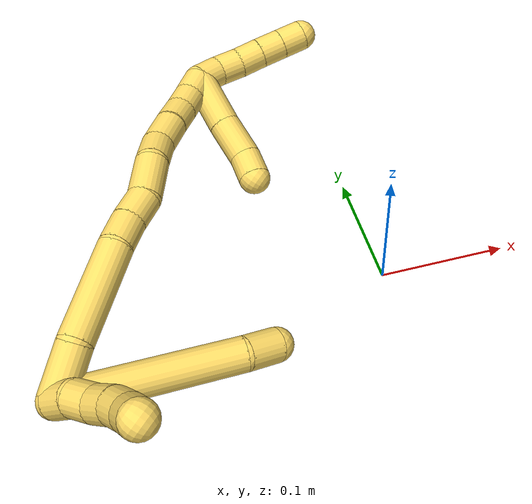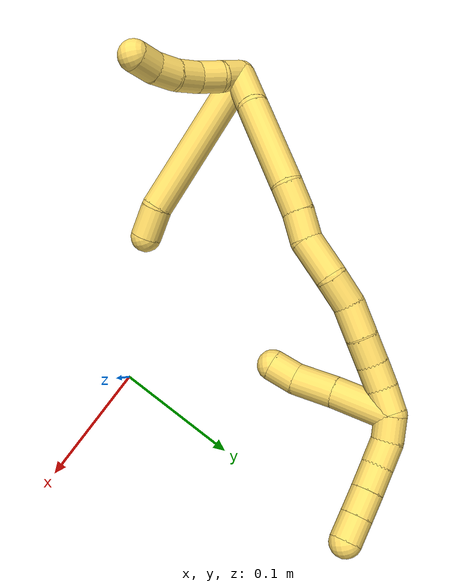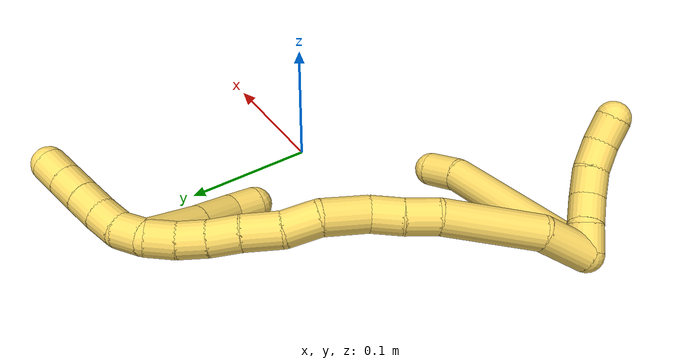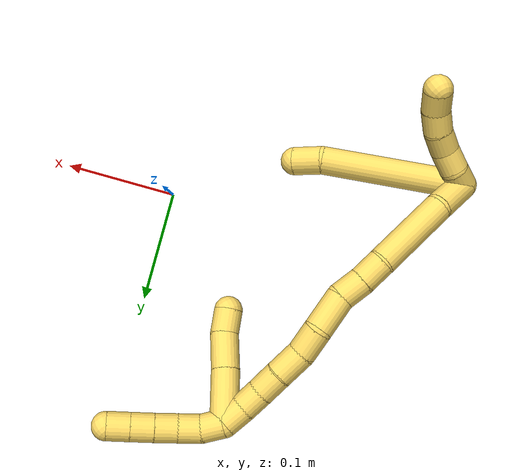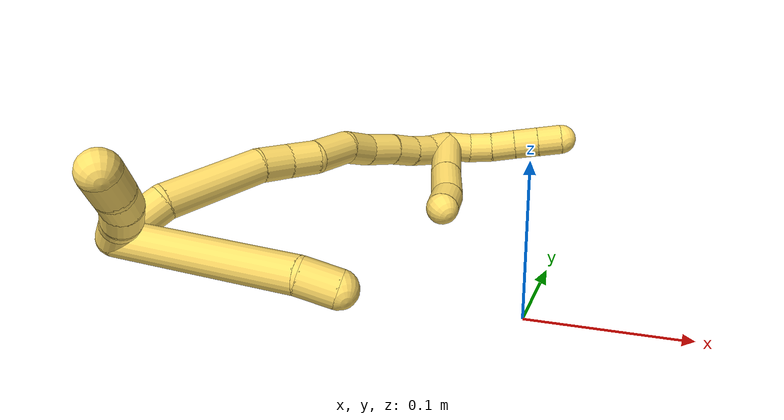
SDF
<sdf version="1.7">
 <world name="default">
  <model name="5">
   <static>0</static>
   <link name="5">
    <collision name="collision-cylinder-e_1_2_8">
     <pose>-0.029639 0.03661 -0.040576 -2.40754 -0.496947 1.16668</pose>
     <geometry><cylinder><radius>0.0125</radius><length>0.124341</length></cylinder></geometry>
     <surface>
      <friction><ode><mu>1.16</mu><mu2>1.16</mu2><slip1>0</slip1><slip2>0</slip2></ode></friction>
      <contact><ode><kp>1e+06</kp><kd>1</kd><max_vel>0</max_vel><min_depth>0.001</min_depth></ode></contact>
     </surface>
    </collision>
    <visual name="visual-cylinder-e_1_2_8">
     <pose>-0.029639 0.03661 -0.040576 -2.40754 -0.496947 1.16668</pose>
     <geometry><cylinder><radius>0.0125</radius><length>0.124341</length></cylinder></geometry>
     <material><ambient>1 0.858824 0.4 1</ambient></material>
    </visual>
    <collision name="collision-cylinder-e_2_8_6">
     <pose>-0.068138 0.07884 -0.088535 -2.4909 -0.762231 1.74212</pose>
     <geometry><cylinder><radius>0.0125</radius><length>0.025659</length></cylinder></geometry>
     <surface>
      <friction><ode><mu>1.16</mu><mu2>1.16</mu2><slip1>0</slip1><slip2>0</slip2></ode></friction>
      <contact><ode><kp>1e+06</kp><kd>1</kd><max_vel>0</max_vel><min_depth>0.001</min_depth></ode></contact>
     </surface>
    </collision>
    <visual name="visual-cylinder-e_2_8_6">
     <pose>-0.068138 0.07884 -0.088535 -2.4909 -0.762231 1.74212</pose>
     <geometry><cylinder><radius>0.0125</radius><length>0.025659</length></cylinder></geometry>
     <material><ambient>1 0.858824 0.4 1</ambient></material>
    </visual>
    <collision name="collision-cylinder-e_1_2_9">
     <pose>0.004683 0.007467 -0.004724 -2.13485 0.487336 -0.848119</pose>
     <geometry><cylinder><radius>0.0125</radius><length>0.02</length></cylinder></geometry>
     <surface>
      <friction><ode><mu>1.16</mu><mu2>1.16</mu2><slip1>0</slip1><slip2>0</slip2></ode></friction>
      <contact><ode><kp>1e+06</kp><kd>1</kd><max_vel>0</max_vel><min_depth>0.001</min_depth></ode></contact>
     </surface>
    </collision>
    <visual name="visual-cylinder-e_1_2_9">
     <pose>0.004683 0.007467 -0.004724 -2.13485 0.487336 -0.848119</pose>
     <geometry><cylinder><radius>0.0125</radius><length>0.02</length></cylinder></geometry>
     <material><ambient>1 0.858824 0.4 1</ambient></material>
    </visual>
    <collision name="collision-cylinder-e_2_9_10">
     <pose>0.013838 0.02047 -0.016473 -2.47426 0.463701 -1.19589</pose>
     <geometry><cylinder><radius>0.0125</radius><length>0.02</length></cylinder></geometry>
     <surface>
      <friction><ode><mu>1.16</mu><mu2>1.16</mu2><slip1>0</slip1><slip2>0</slip2></ode></friction>
      <contact><ode><kp>1e+06</kp><kd>1</kd><max_vel>0</max_vel><min_depth>0.001</min_depth></ode></contact>
     </surface>
    </collision>
    <visual name="visual-cylinder-e_2_9_10">
     <pose>0.013838 0.02047 -0.016473 -2.47426 0.463701 -1.19589</pose>
     <geometry><cylinder><radius>0.0125</radius><length>0.02</length></cylinder></geometry>
     <material><ambient>1 0.858824 0.4 1</ambient></material>
    </visual>
    <collision name="collision-cylinder-e_3_10_11">
     <pose>0.023915 0.032552 -0.028571 -2.22993 0.59487 -1.11753</pose>
     <geometry><cylinder><radius>0.0125</radius><length>0.02</length></cylinder></geometry>
     <surface>
      <friction><ode><mu>1.16</mu><mu2>1.16</mu2><slip1>0</slip1><slip2>0</slip2></ode></friction>
      <contact><ode><kp>1e+06</kp><kd>1</kd><max_vel>0</max_vel><min_depth>0.001</min_depth></ode></contact>
     </surface>
    </collision>
    <visual name="visual-cylinder-e_3_10_11">
     <pose>0.023915 0.032552 -0.028571 -2.22993 0.59487 -1.11753</pose>
     <geometry><cylinder><radius>0.0125</radius><length>0.02</length></cylinder></geometry>
     <material><ambient>1 0.858824 0.4 1</ambient></material>
    </visual>
    <collision name="collision-cylinder-e_4_11_12">
     <pose>0.036596 0.044138 -0.038595 -2.34748 0.786285 -1.55978</pose>
     <geometry><cylinder><radius>0.0125</radius><length>0.02</length></cylinder></geometry>
     <surface>
      <friction><ode><mu>1.16</mu><mu2>1.16</mu2><slip1>0</slip1><slip2>0</slip2></ode></friction>
      <contact><ode><kp>1e+06</kp><kd>1</kd><max_vel>0</max_vel><min_depth>0.001</min_depth></ode></contact>
     </surface>
    </collision>
    <visual name="visual-cylinder-e_4_11_12">
     <pose>0.036596 0.044138 -0.038595 -2.34748 0.786285 -1.55978</pose>
     <geometry><cylinder><radius>0.0125</radius><length>0.02</length></cylinder></geometry>
     <material><ambient>1 0.858824 0.4 1</ambient></material>
    </visual>
    <collision name="collision-cylinder-e_5_12_5">
     <pose>0.051858 0.054118 -0.04648 -2.10664 0.95865 -1.48002</pose>
     <geometry><cylinder><radius>0.0125</radius><length>0.02</length></cylinder></geometry>
     <surface>
      <friction><ode><mu>1.16</mu><mu2>1.16</mu2><slip1>0</slip1><slip2>0</slip2></ode></friction>
      <contact><ode><kp>1e+06</kp><kd>1</kd><max_vel>0</max_vel><min_depth>0.001</min_depth></ode></contact>
     </surface>
    </collision>
    <visual name="visual-cylinder-e_5_12_5">
     <pose>0.051858 0.054118 -0.04648 -2.10664 0.95865 -1.48002</pose>
     <geometry><cylinder><radius>0.0125</radius><length>0.02</length></cylinder></geometry>
     <material><ambient>1 0.858824 0.4 1</ambient></material>
    </visual>
    <collision name="collision-cylinder-e_1_2_13">
     <pose>-0.007566 0.015788 0.005992 -1.20807 -0.42122 0.292936</pose>
     <geometry><cylinder><radius>0.0125</radius><length>0.037008</length></cylinder></geometry>
     <surface>
      <friction><ode><mu>1.16</mu><mu2>1.16</mu2><slip1>0</slip1><slip2>0</slip2></ode></friction>
      <contact><ode><kp>1e+06</kp><kd>1</kd><max_vel>0</max_vel><min_depth>0.001</min_depth></ode></contact>
     </surface>
    </collision>
    <visual name="visual-cylinder-e_1_2_13">
     <pose>-0.007566 0.015788 0.005992 -1.20807 -0.42122 0.292936</pose>
     <geometry><cylinder><radius>0.0125</radius><length>0.037008</length></cylinder></geometry>
     <material><ambient>1 0.858824 0.4 1</ambient></material>
    </visual>
    <collision name="collision-cylinder-e_2_13_14">
     <pose>-0.038783 0.056157 0.021761 -1.19221 -0.729521 0.506972</pose>
     <geometry><cylinder><radius>0.0125</radius><length>0.07097</length></cylinder></geometry>
     <surface>
      <friction><ode><mu>1.16</mu><mu2>1.16</mu2><slip1>0</slip1><slip2>0</slip2></ode></friction>
      <contact><ode><kp>1e+06</kp><kd>1</kd><max_vel>0</max_vel><min_depth>0.001</min_depth></ode></contact>
     </surface>
    </collision>
    <visual name="visual-cylinder-e_2_13_14">
     <pose>-0.038783 0.056157 0.021761 -1.19221 -0.729521 0.506972</pose>
     <geometry><cylinder><radius>0.0125</radius><length>0.07097</length></cylinder></geometry>
     <material><ambient>1 0.858824 0.4 1</ambient></material>
    </visual>
    <collision name="collision-cylinder-e_3_14_15">
     <pose>-0.071682 0.087127 0.033971 -1.20714 -0.934157 0.669169</pose>
     <geometry><cylinder><radius>0.0125</radius><length>0.023002</length></cylinder></geometry>
     <surface>
      <friction><ode><mu>1.16</mu><mu2>1.16</mu2><slip1>0</slip1><slip2>0</slip2></ode></friction>
      <contact><ode><kp>1e+06</kp><kd>1</kd><max_vel>0</max_vel><min_depth>0.001</min_depth></ode></contact>
     </surface>
    </collision>
    <visual name="visual-cylinder-e_3_14_15">
     <pose>-0.071682 0.087127 0.033971 -1.20714 -0.934157 0.669169</pose>
     <geometry><cylinder><radius>0.0125</radius><length>0.023002</length></cylinder></geometry>
     <material><ambient>1 0.858824 0.4 1</ambient></material>
    </visual>
    <collision name="collision-cylinder-e_4_15_16">
     <pose>-0.089771 0.10047 0.037703 -1.38595 -0.896055 0.759439</pose>
     <geometry><cylinder><radius>0.0125</radius><length>0.022645</length></cylinder></geometry>
     <surface>
      <friction><ode><mu>1.16</mu><mu2>1.16</mu2><slip1>0</slip1><slip2>0</slip2></ode></friction>
      <contact><ode><kp>1e+06</kp><kd>1</kd><max_vel>0</max_vel><min_depth>0.001</min_depth></ode></contact>
     </surface>
    </collision>
    <visual name="visual-cylinder-e_4_15_16">
     <pose>-0.089771 0.10047 0.037703 -1.38595 -0.896055 0.759439</pose>
     <geometry><cylinder><radius>0.0125</radius><length>0.022645</length></cylinder></geometry>
     <material><ambient>1 0.858824 0.4 1</ambient></material>
    </visual>
    <collision name="collision-cylinder-e_5_16_17">
     <pose>-0.110951 0.115961 0.045736 -0.903052 -0.848418 0.431217</pose>
     <geometry><cylinder><radius>0.0125</radius><length>0.032892</length></cylinder></geometry>
     <surface>
      <friction><ode><mu>1.16</mu><mu2>1.16</mu2><slip1>0</slip1><slip2>0</slip2></ode></friction>
      <contact><ode><kp>1e+06</kp><kd>1</kd><max_vel>0</max_vel><min_depth>0.001</min_depth></ode></contact>
     </surface>
    </collision>
    <visual name="visual-cylinder-e_5_16_17">
     <pose>-0.110951 0.115961 0.045736 -0.903052 -0.848418 0.431217</pose>
     <geometry><cylinder><radius>0.0125</radius><length>0.032892</length></cylinder></geometry>
     <material><ambient>1 0.858824 0.4 1</ambient></material>
    </visual>
    <collision name="collision-cylinder-e_6_17_18">
     <pose>-0.134552 0.127944 0.056166 -0.750102 -1.14907 0.499108</pose>
     <geometry><cylinder><radius>0.0125</radius><length>0.024689</length></cylinder></geometry>
     <surface>
      <friction><ode><mu>1.16</mu><mu2>1.16</mu2><slip1>0</slip1><slip2>0</slip2></ode></friction>
      <contact><ode><kp>1e+06</kp><kd>1</kd><max_vel>0</max_vel><min_depth>0.001</min_depth></ode></contact>
     </surface>
    </collision>
    <visual name="visual-cylinder-e_6_17_18">
     <pose>-0.134552 0.127944 0.056166 -0.750102 -1.14907 0.499108</pose>
     <geometry><cylinder><radius>0.0125</radius><length>0.024689</length></cylinder></geometry>
     <material><ambient>1 0.858824 0.4 1</ambient></material>
    </visual>
    <collision name="collision-cylinder-e_7_18_19">
     <pose>-0.157198 0.137737 0.062064 -1.23698 -1.03753 0.771826</pose>
     <geometry><cylinder><radius>0.0125</radius><length>0.026437</length></cylinder></geometry>
     <surface>
      <friction><ode><mu>1.16</mu><mu2>1.16</mu2><slip1>0</slip1><slip2>0</slip2></ode></friction>
      <contact><ode><kp>1e+06</kp><kd>1</kd><max_vel>0</max_vel><min_depth>0.001</min_depth></ode></contact>
     </surface>
    </collision>
    <visual name="visual-cylinder-e_7_18_19">
     <pose>-0.157198 0.137737 0.062064 -1.23698 -1.03753 0.771826</pose>
     <geometry><cylinder><radius>0.0125</radius><length>0.026437</length></cylinder></geometry>
     <material><ambient>1 0.858824 0.4 1</ambient></material>
    </visual>
    <collision name="collision-cylinder-e_8_19_20">
     <pose>-0.178483 0.148431 0.065812 -1.22892 -1.13485 0.845199</pose>
     <geometry><cylinder><radius>0.0125</radius><length>0.021846</length></cylinder></geometry>
     <surface>
      <friction><ode><mu>1.16</mu><mu2>1.16</mu2><slip1>0</slip1><slip2>0</slip2></ode></friction>
      <contact><ode><kp>1e+06</kp><kd>1</kd><max_vel>0</max_vel><min_depth>0.001</min_depth></ode></contact>
     </surface>
    </collision>
    <visual name="visual-cylinder-e_8_19_20">
     <pose>-0.178483 0.148431 0.065812 -1.22892 -1.13485 0.845199</pose>
     <geometry><cylinder><radius>0.0125</radius><length>0.021846</length></cylinder></geometry>
     <material><ambient>1 0.858824 0.4 1</ambient></material>
    </visual>
    <collision name="collision-cylinder-e_9_20_21">
     <pose>-0.19697 0.157798 0.068986 -1.25733 -1.0196 0.772202</pose>
     <geometry><cylinder><radius>0.0125</radius><length>0.020157</length></cylinder></geometry>
     <surface>
      <friction><ode><mu>1.16</mu><mu2>1.16</mu2><slip1>0</slip1><slip2>0</slip2></ode></friction>
      <contact><ode><kp>1e+06</kp><kd>1</kd><max_vel>0</max_vel><min_depth>0.001</min_depth></ode></contact>
     </surface>
    </collision>
    <visual name="visual-cylinder-e_9_20_21">
     <pose>-0.19697 0.157798 0.068986 -1.25733 -1.0196 0.772202</pose>
     <geometry><cylinder><radius>0.0125</radius><length>0.020157</length></cylinder></geometry>
     <material><ambient>1 0.858824 0.4 1</ambient></material>
    </visual>
    <collision name="collision-cylinder-e_10_21_1">
     <pose>-0.213312 0.169197 0.072262 -1.31794 -0.866681 0.688131</pose>
     <geometry><cylinder><radius>0.0125</radius><length>0.020354</length></cylinder></geometry>
     <surface>
      <friction><ode><mu>1.16</mu><mu2>1.16</mu2><slip1>0</slip1><slip2>0</slip2></ode></friction>
      <contact><ode><kp>1e+06</kp><kd>1</kd><max_vel>0</max_vel><min_depth>0.001</min_depth></ode></contact>
     </surface>
    </collision>
    <visual name="visual-cylinder-e_10_21_1">
     <pose>-0.213312 0.169197 0.072262 -1.31794 -0.866681 0.688131</pose>
     <geometry><cylinder><radius>0.0125</radius><length>0.020354</length></cylinder></geometry>
     <material><ambient>1 0.858824 0.4 1</ambient></material>
    </visual>
    <collision name="collision-cylinder-e_1_1_22">
     <pose>-0.228405 0.181666 0.070893 -2.03078 -0.823524 1.22648</pose>
     <geometry><cylinder><radius>0.0125</radius><length>0.02</length></cylinder></geometry>
     <surface>
      <friction><ode><mu>1.16</mu><mu2>1.16</mu2><slip1>0</slip1><slip2>0</slip2></ode></friction>
      <contact><ode><kp>1e+06</kp><kd>1</kd><max_vel>0</max_vel><min_depth>0.001</min_depth></ode></contact>
     </surface>
    </collision>
    <visual name="visual-cylinder-e_1_1_22">
     <pose>-0.228405 0.181666 0.070893 -2.03078 -0.823524 1.22648</pose>
     <geometry><cylinder><radius>0.0125</radius><length>0.02</length></cylinder></geometry>
     <material><ambient>1 0.858824 0.4 1</ambient></material>
    </visual>
    <collision name="collision-cylinder-e_2_22_23">
     <pose>-0.240685 0.195061 0.063166 -2.14348 -0.517179 0.903591</pose>
     <geometry><cylinder><radius>0.0125</radius><length>0.02</length></cylinder></geometry>
     <surface>
      <friction><ode><mu>1.16</mu><mu2>1.16</mu2><slip1>0</slip1><slip2>0</slip2></ode></friction>
      <contact><ode><kp>1e+06</kp><kd>1</kd><max_vel>0</max_vel><min_depth>0.001</min_depth></ode></contact>
     </surface>
    </collision>
    <visual name="visual-cylinder-e_2_22_23">
     <pose>-0.240685 0.195061 0.063166 -2.14348 -0.517179 0.903591</pose>
     <geometry><cylinder><radius>0.0125</radius><length>0.02</length></cylinder></geometry>
     <material><ambient>1 0.858824 0.4 1</ambient></material>
    </visual>
    <collision name="collision-cylinder-e_3_23_24">
     <pose>-0.249878 0.210263 0.054029 -2.08169 -0.43883 0.727436</pose>
     <geometry><cylinder><radius>0.0125</radius><length>0.02</length></cylinder></geometry>
     <surface>
      <friction><ode><mu>1.16</mu><mu2>1.16</mu2><slip1>0</slip1><slip2>0</slip2></ode></friction>
      <contact><ode><kp>1e+06</kp><kd>1</kd><max_vel>0</max_vel><min_depth>0.001</min_depth></ode></contact>
     </surface>
    </collision>
    <visual name="visual-cylinder-e_3_23_24">
     <pose>-0.249878 0.210263 0.054029 -2.08169 -0.43883 0.727436</pose>
     <geometry><cylinder><radius>0.0125</radius><length>0.02</length></cylinder></geometry>
     <material><ambient>1 0.858824 0.4 1</ambient></material>
    </visual>
    <collision name="collision-cylinder-e_4_24_25">
     <pose>-0.25838 0.22595 0.044996 -2.10484 -0.439327 0.74617</pose>
     <geometry><cylinder><radius>0.0125</radius><length>0.02</length></cylinder></geometry>
     <surface>
      <friction><ode><mu>1.16</mu><mu2>1.16</mu2><slip1>0</slip1><slip2>0</slip2></ode></friction>
      <contact><ode><kp>1e+06</kp><kd>1</kd><max_vel>0</max_vel><min_depth>0.001</min_depth></ode></contact>
     </surface>
    </collision>
    <visual name="visual-cylinder-e_4_24_25">
     <pose>-0.25838 0.22595 0.044996 -2.10484 -0.439327 0.74617</pose>
     <geometry><cylinder><radius>0.0125</radius><length>0.02</length></cylinder></geometry>
     <material><ambient>1 0.858824 0.4 1</ambient></material>
    </visual>
    <collision name="collision-cylinder-e_5_25_4">
     <pose>-0.266852 0.241531 0.035752 -2.10768 -0.435582 0.742416</pose>
     <geometry><cylinder><radius>0.0125</radius><length>0.02</length></cylinder></geometry>
     <surface>
      <friction><ode><mu>1.16</mu><mu2>1.16</mu2><slip1>0</slip1><slip2>0</slip2></ode></friction>
      <contact><ode><kp>1e+06</kp><kd>1</kd><max_vel>0</max_vel><min_depth>0.001</min_depth></ode></contact>
     </surface>
    </collision>
    <visual name="visual-cylinder-e_5_25_4">
     <pose>-0.266852 0.241531 0.035752 -2.10768 -0.435582 0.742416</pose>
     <geometry><cylinder><radius>0.0125</radius><length>0.02</length></cylinder></geometry>
     <material><ambient>1 0.858824 0.4 1</ambient></material>
    </visual>
    <collision name="collision-cylinder-e_1_1_26">
     <pose>-0.212686 0.168188 0.053873 2.78834 0.374052 1.62926</pose>
     <geometry><cylinder><radius>0.0125</radius><length>0.045884</length></cylinder></geometry>
     <surface>
      <friction><ode><mu>1.16</mu><mu2>1.16</mu2><slip1>0</slip1><slip2>0</slip2></ode></friction>
      <contact><ode><kp>1e+06</kp><kd>1</kd><max_vel>0</max_vel><min_depth>0.001</min_depth></ode></contact>
     </surface>
    </collision>
    <visual name="visual-cylinder-e_1_1_26">
     <pose>-0.212686 0.168188 0.053873 2.78834 0.374052 1.62926</pose>
     <geometry><cylinder><radius>0.0125</radius><length>0.045884</length></cylinder></geometry>
     <material><ambient>1 0.858824 0.4 1</ambient></material>
    </visual>
    <collision name="collision-cylinder-e_2_26_27">
     <pose>-0.19851 0.156341 0.01916 2.84663 0.361189 1.77558</pose>
     <geometry><cylinder><radius>0.0125</radius><length>0.032792</length></cylinder></geometry>
     <surface>
      <friction><ode><mu>1.16</mu><mu2>1.16</mu2><slip1>0</slip1><slip2>0</slip2></ode></friction>
      <contact><ode><kp>1e+06</kp><kd>1</kd><max_vel>0</max_vel><min_depth>0.001</min_depth></ode></contact>
     </surface>
    </collision>
    <visual name="visual-cylinder-e_2_26_27">
     <pose>-0.19851 0.156341 0.01916 2.84663 0.361189 1.77558</pose>
     <geometry><cylinder><radius>0.0125</radius><length>0.032792</length></cylinder></geometry>
     <material><ambient>1 0.858824 0.4 1</ambient></material>
    </visual>
    <collision name="collision-cylinder-e_3_27_3">
     <pose>-0.186767 0.148547 -0.003711 2.7551 0.591866 2.00037</pose>
     <geometry><cylinder><radius>0.0125</radius><length>0.021324</length></cylinder></geometry>
     <surface>
      <friction><ode><mu>1.16</mu><mu2>1.16</mu2><slip1>0</slip1><slip2>0</slip2></ode></friction>
      <contact><ode><kp>1e+06</kp><kd>1</kd><max_vel>0</max_vel><min_depth>0.001</min_depth></ode></contact>
     </surface>
    </collision>
    <visual name="visual-cylinder-e_3_27_3">
     <pose>-0.186767 0.148547 -0.003711 2.7551 0.591866 2.00037</pose>
     <geometry><cylinder><radius>0.0125</radius><length>0.021324</length></cylinder></geometry>
     <material><ambient>1 0.858824 0.4 1</ambient></material>
    </visual>
    <collision name="collision-sphere-3">
     <pose>-0.180819 0.145212 -0.011907 0 -0 0</pose>
     <geometry><sphere><radius>0.0125</radius></sphere></geometry>
     <surface>
      <friction><ode><mu>1.16</mu><mu2>1.16</mu2><slip1>0</slip1><slip2>0</slip2></ode></friction>
      <contact><ode><kp>1e+06</kp><kd>1</kd><max_vel>0</max_vel><min_depth>0.001</min_depth></ode></contact>
     </surface>
    </collision>
    <visual name="visual-sphere-3">
     <pose>-0.180819 0.145212 -0.011907 0 -0 0</pose>
     <geometry><sphere><radius>0.0125</radius></sphere></geometry>
     <material><ambient>1 0.858824 0.4 1</ambient></material>
    </visual>
    <collision name="collision-sphere-27">
     <pose>-0.192715 0.151882 0.004485 0 -0 0</pose>
     <geometry><sphere><radius>0.0125</radius></sphere></geometry>
     <surface>
      <friction><ode><mu>1.16</mu><mu2>1.16</mu2><slip1>0</slip1><slip2>0</slip2></ode></friction>
      <contact><ode><kp>1e+06</kp><kd>1</kd><max_vel>0</max_vel><min_depth>0.001</min_depth></ode></contact>
     </surface>
    </collision>
    <visual name="visual-sphere-27">
     <pose>-0.192715 0.151882 0.004485 0 -0 0</pose>
     <geometry><sphere><radius>0.0125</radius></sphere></geometry>
     <material><ambient>1 0.858824 0.4 1</ambient></material>
    </visual>
    <collision name="collision-sphere-26">
     <pose>-0.204304 0.1608 0.033836 0 -0 0</pose>
     <geometry><sphere><radius>0.0125</radius></sphere></geometry>
     <surface>
      <friction><ode><mu>1.16</mu><mu2>1.16</mu2><slip1>0</slip1><slip2>0</slip2></ode></friction>
      <contact><ode><kp>1e+06</kp><kd>1</kd><max_vel>0</max_vel><min_depth>0.001</min_depth></ode></contact>
     </surface>
    </collision>
    <visual name="visual-sphere-26">
     <pose>-0.204304 0.1608 0.033836 0 -0 0</pose>
     <geometry><sphere><radius>0.0125</radius></sphere></geometry>
     <material><ambient>1 0.858824 0.4 1</ambient></material>
    </visual>
    <collision name="collision-sphere-4">
     <pose>-0.271072 0.249322 0.031115 0 -0 0</pose>
     <geometry><sphere><radius>0.0125</radius></sphere></geometry>
     <surface>
      <friction><ode><mu>1.16</mu><mu2>1.16</mu2><slip1>0</slip1><slip2>0</slip2></ode></friction>
      <contact><ode><kp>1e+06</kp><kd>1</kd><max_vel>0</max_vel><min_depth>0.001</min_depth></ode></contact>
     </surface>
    </collision>
    <visual name="visual-sphere-4">
     <pose>-0.271072 0.249322 0.031115 0 -0 0</pose>
     <geometry><sphere><radius>0.0125</radius></sphere></geometry>
     <material><ambient>1 0.858824 0.4 1</ambient></material>
    </visual>
    <collision name="collision-sphere-25">
     <pose>-0.262633 0.23374 0.040389 0 -0 0</pose>
     <geometry><sphere><radius>0.0125</radius></sphere></geometry>
     <surface>
      <friction><ode><mu>1.16</mu><mu2>1.16</mu2><slip1>0</slip1><slip2>0</slip2></ode></friction>
      <contact><ode><kp>1e+06</kp><kd>1</kd><max_vel>0</max_vel><min_depth>0.001</min_depth></ode></contact>
     </surface>
    </collision>
    <visual name="visual-sphere-25">
     <pose>-0.262633 0.23374 0.040389 0 -0 0</pose>
     <geometry><sphere><radius>0.0125</radius></sphere></geometry>
     <material><ambient>1 0.858824 0.4 1</ambient></material>
    </visual>
    <collision name="collision-sphere-24">
     <pose>-0.254126 0.21816 0.049603 0 -0 0</pose>
     <geometry><sphere><radius>0.0125</radius></sphere></geometry>
     <surface>
      <friction><ode><mu>1.16</mu><mu2>1.16</mu2><slip1>0</slip1><slip2>0</slip2></ode></friction>
      <contact><ode><kp>1e+06</kp><kd>1</kd><max_vel>0</max_vel><min_depth>0.001</min_depth></ode></contact>
     </surface>
    </collision>
    <visual name="visual-sphere-24">
     <pose>-0.254126 0.21816 0.049603 0 -0 0</pose>
     <geometry><sphere><radius>0.0125</radius></sphere></geometry>
     <material><ambient>1 0.858824 0.4 1</ambient></material>
    </visual>
    <collision name="collision-sphere-23">
     <pose>-0.245629 0.202367 0.058456 0 -0 0</pose>
     <geometry><sphere><radius>0.0125</radius></sphere></geometry>
     <surface>
      <friction><ode><mu>1.16</mu><mu2>1.16</mu2><slip1>0</slip1><slip2>0</slip2></ode></friction>
      <contact><ode><kp>1e+06</kp><kd>1</kd><max_vel>0</max_vel><min_depth>0.001</min_depth></ode></contact>
     </surface>
    </collision>
    <visual name="visual-sphere-23">
     <pose>-0.245629 0.202367 0.058456 0 -0 0</pose>
     <geometry><sphere><radius>0.0125</radius></sphere></geometry>
     <material><ambient>1 0.858824 0.4 1</ambient></material>
    </visual>
    <collision name="collision-sphere-22">
     <pose>-0.23574 0.187756 0.067876 0 -0 0</pose>
     <geometry><sphere><radius>0.0125</radius></sphere></geometry>
     <surface>
      <friction><ode><mu>1.16</mu><mu2>1.16</mu2><slip1>0</slip1><slip2>0</slip2></ode></friction>
      <contact><ode><kp>1e+06</kp><kd>1</kd><max_vel>0</max_vel><min_depth>0.001</min_depth></ode></contact>
     </surface>
    </collision>
    <visual name="visual-sphere-22">
     <pose>-0.23574 0.187756 0.067876 0 -0 0</pose>
     <geometry><sphere><radius>0.0125</radius></sphere></geometry>
     <material><ambient>1 0.858824 0.4 1</ambient></material>
    </visual>
    <collision name="collision-sphere-1">
     <pose>-0.221069 0.175576 0.07391 0 -0 0</pose>
     <geometry><sphere><radius>0.0125</radius></sphere></geometry>
     <surface>
      <friction><ode><mu>1.16</mu><mu2>1.16</mu2><slip1>0</slip1><slip2>0</slip2></ode></friction>
      <contact><ode><kp>1e+06</kp><kd>1</kd><max_vel>0</max_vel><min_depth>0.001</min_depth></ode></contact>
     </surface>
    </collision>
    <visual name="visual-sphere-1">
     <pose>-0.221069 0.175576 0.07391 0 -0 0</pose>
     <geometry><sphere><radius>0.0125</radius></sphere></geometry>
     <material><ambient>1 0.858824 0.4 1</ambient></material>
    </visual>
    <collision name="collision-sphere-21">
     <pose>-0.205556 0.162819 0.070614 0 -0 0</pose>
     <geometry><sphere><radius>0.0125</radius></sphere></geometry>
     <surface>
      <friction><ode><mu>1.16</mu><mu2>1.16</mu2><slip1>0</slip1><slip2>0</slip2></ode></friction>
      <contact><ode><kp>1e+06</kp><kd>1</kd><max_vel>0</max_vel><min_depth>0.001</min_depth></ode></contact>
     </surface>
    </collision>
    <visual name="visual-sphere-21">
     <pose>-0.205556 0.162819 0.070614 0 -0 0</pose>
     <geometry><sphere><radius>0.0125</radius></sphere></geometry>
     <material><ambient>1 0.858824 0.4 1</ambient></material>
    </visual>
    <collision name="collision-sphere-11">
     <pose>0.029519 0.0391 -0.033643 0 -0 0</pose>
     <geometry><sphere><radius>0.0125</radius></sphere></geometry>
     <surface>
      <friction><ode><mu>1.16</mu><mu2>1.16</mu2><slip1>0</slip1><slip2>0</slip2></ode></friction>
      <contact><ode><kp>1e+06</kp><kd>1</kd><max_vel>0</max_vel><min_depth>0.001</min_depth></ode></contact>
     </surface>
    </collision>
    <visual name="visual-sphere-11">
     <pose>0.029519 0.0391 -0.033643 0 -0 0</pose>
     <geometry><sphere><radius>0.0125</radius></sphere></geometry>
     <material><ambient>1 0.858824 0.4 1</ambient></material>
    </visual>
    <collision name="collision-sphere-10">
     <pose>0.018311 0.026005 -0.023498 0 -0 0</pose>
     <geometry><sphere><radius>0.0125</radius></sphere></geometry>
     <surface>
      <friction><ode><mu>1.16</mu><mu2>1.16</mu2><slip1>0</slip1><slip2>0</slip2></ode></friction>
      <contact><ode><kp>1e+06</kp><kd>1</kd><max_vel>0</max_vel><min_depth>0.001</min_depth></ode></contact>
     </surface>
    </collision>
    <visual name="visual-sphere-10">
     <pose>0.018311 0.026005 -0.023498 0 -0 0</pose>
     <geometry><sphere><radius>0.0125</radius></sphere></geometry>
     <material><ambient>1 0.858824 0.4 1</ambient></material>
    </visual>
    <collision name="collision-sphere-6">
     <pose>-0.076997 0.084461 -0.095919 0 -0 0</pose>
     <geometry><sphere><radius>0.0125</radius></sphere></geometry>
     <surface>
      <friction><ode><mu>1.16</mu><mu2>1.16</mu2><slip1>0</slip1><slip2>0</slip2></ode></friction>
      <contact><ode><kp>1e+06</kp><kd>1</kd><max_vel>0</max_vel><min_depth>0.001</min_depth></ode></contact>
     </surface>
    </collision>
    <visual name="visual-sphere-6">
     <pose>-0.076997 0.084461 -0.095919 0 -0 0</pose>
     <geometry><sphere><radius>0.0125</radius></sphere></geometry>
     <material><ambient>1 0.858824 0.4 1</ambient></material>
    </visual>
    <collision name="collision-sphere-9">
     <pose>0.009365 0.014934 -0.009448 0 -0 0</pose>
     <geometry><sphere><radius>0.0125</radius></sphere></geometry>
     <surface>
      <friction><ode><mu>1.16</mu><mu2>1.16</mu2><slip1>0</slip1><slip2>0</slip2></ode></friction>
      <contact><ode><kp>1e+06</kp><kd>1</kd><max_vel>0</max_vel><min_depth>0.001</min_depth></ode></contact>
     </surface>
    </collision>
    <visual name="visual-sphere-9">
     <pose>0.009365 0.014934 -0.009448 0 -0 0</pose>
     <geometry><sphere><radius>0.0125</radius></sphere></geometry>
     <material><ambient>1 0.858824 0.4 1</ambient></material>
    </visual>
    <collision name="collision-sphere-2">
     <geometry><sphere><radius>0.0125</radius></sphere></geometry>
     <surface>
      <friction><ode><mu>1.16</mu><mu2>1.16</mu2><slip1>0</slip1><slip2>0</slip2></ode></friction>
      <contact><ode><kp>1e+06</kp><kd>1</kd><max_vel>0</max_vel><min_depth>0.001</min_depth></ode></contact>
     </surface>
    </collision>
    <visual name="visual-sphere-2">
     <geometry><sphere><radius>0.0125</radius></sphere></geometry>
     <material><ambient>1 0.858824 0.4 1</ambient></material>
    </visual>
    <collision name="collision-sphere-19">
     <pose>-0.168581 0.144086 0.064266 0 -0 0</pose>
     <geometry><sphere><radius>0.0125</radius></sphere></geometry>
     <surface>
      <friction><ode><mu>1.16</mu><mu2>1.16</mu2><slip1>0</slip1><slip2>0</slip2></ode></friction>
      <contact><ode><kp>1e+06</kp><kd>1</kd><max_vel>0</max_vel><min_depth>0.001</min_depth></ode></contact>
     </surface>
    </collision>
    <visual name="visual-sphere-19">
     <pose>-0.168581 0.144086 0.064266 0 -0 0</pose>
     <geometry><sphere><radius>0.0125</radius></sphere></geometry>
     <material><ambient>1 0.858824 0.4 1</ambient></material>
    </visual>
    <collision name="collision-sphere-8">
     <pose>-0.059279 0.073219 -0.081152 0 -0 0</pose>
     <geometry><sphere><radius>0.0125</radius></sphere></geometry>
     <surface>
      <friction><ode><mu>1.16</mu><mu2>1.16</mu2><slip1>0</slip1><slip2>0</slip2></ode></friction>
      <contact><ode><kp>1e+06</kp><kd>1</kd><max_vel>0</max_vel><min_depth>0.001</min_depth></ode></contact>
     </surface>
    </collision>
    <visual name="visual-sphere-8">
     <pose>-0.059279 0.073219 -0.081152 0 -0 0</pose>
     <geometry><sphere><radius>0.0125</radius></sphere></geometry>
     <material><ambient>1 0.858824 0.4 1</ambient></material>
    </visual>
    <collision name="collision-sphere-12">
     <pose>0.043673 0.049177 -0.043547 0 -0 0</pose>
     <geometry><sphere><radius>0.0125</radius></sphere></geometry>
     <surface>
      <friction><ode><mu>1.16</mu><mu2>1.16</mu2><slip1>0</slip1><slip2>0</slip2></ode></friction>
      <contact><ode><kp>1e+06</kp><kd>1</kd><max_vel>0</max_vel><min_depth>0.001</min_depth></ode></contact>
     </surface>
    </collision>
    <visual name="visual-sphere-12">
     <pose>0.043673 0.049177 -0.043547 0 -0 0</pose>
     <geometry><sphere><radius>0.0125</radius></sphere></geometry>
     <material><ambient>1 0.858824 0.4 1</ambient></material>
    </visual>
    <collision name="collision-sphere-5">
     <pose>0.060042 0.059059 -0.049414 0 -0 0</pose>
     <geometry><sphere><radius>0.0125</radius></sphere></geometry>
     <surface>
      <friction><ode><mu>1.16</mu><mu2>1.16</mu2><slip1>0</slip1><slip2>0</slip2></ode></friction>
      <contact><ode><kp>1e+06</kp><kd>1</kd><max_vel>0</max_vel><min_depth>0.001</min_depth></ode></contact>
     </surface>
    </collision>
    <visual name="visual-sphere-5">
     <pose>0.060042 0.059059 -0.049414 0 -0 0</pose>
     <geometry><sphere><radius>0.0125</radius></sphere></geometry>
     <material><ambient>1 0.858824 0.4 1</ambient></material>
    </visual>
    <collision name="collision-sphere-13">
     <pose>-0.015132 0.031576 0.011984 0 -0 0</pose>
     <geometry><sphere><radius>0.0125</radius></sphere></geometry>
     <surface>
      <friction><ode><mu>1.16</mu><mu2>1.16</mu2><slip1>0</slip1><slip2>0</slip2></ode></friction>
      <contact><ode><kp>1e+06</kp><kd>1</kd><max_vel>0</max_vel><min_depth>0.001</min_depth></ode></contact>
     </surface>
    </collision>
    <visual name="visual-sphere-13">
     <pose>-0.015132 0.031576 0.011984 0 -0 0</pose>
     <geometry><sphere><radius>0.0125</radius></sphere></geometry>
     <material><ambient>1 0.858824 0.4 1</ambient></material>
    </visual>
    <collision name="collision-sphere-14">
     <pose>-0.062434 0.080737 0.031539 0 -0 0</pose>
     <geometry><sphere><radius>0.0125</radius></sphere></geometry>
     <surface>
      <friction><ode><mu>1.16</mu><mu2>1.16</mu2><slip1>0</slip1><slip2>0</slip2></ode></friction>
      <contact><ode><kp>1e+06</kp><kd>1</kd><max_vel>0</max_vel><min_depth>0.001</min_depth></ode></contact>
     </surface>
    </collision>
    <visual name="visual-sphere-14">
     <pose>-0.062434 0.080737 0.031539 0 -0 0</pose>
     <geometry><sphere><radius>0.0125</radius></sphere></geometry>
     <material><ambient>1 0.858824 0.4 1</ambient></material>
    </visual>
    <collision name="collision-sphere-15">
     <pose>-0.08093 0.093517 0.036403 0 -0 0</pose>
     <geometry><sphere><radius>0.0125</radius></sphere></geometry>
     <surface>
      <friction><ode><mu>1.16</mu><mu2>1.16</mu2><slip1>0</slip1><slip2>0</slip2></ode></friction>
      <contact><ode><kp>1e+06</kp><kd>1</kd><max_vel>0</max_vel><min_depth>0.001</min_depth></ode></contact>
     </surface>
    </collision>
    <visual name="visual-sphere-15">
     <pose>-0.08093 0.093517 0.036403 0 -0 0</pose>
     <geometry><sphere><radius>0.0125</radius></sphere></geometry>
     <material><ambient>1 0.858824 0.4 1</ambient></material>
    </visual>
    <collision name="collision-sphere-16">
     <pose>-0.098613 0.107423 0.039003 0 -0 0</pose>
     <geometry><sphere><radius>0.0125</radius></sphere></geometry>
     <surface>
      <friction><ode><mu>1.16</mu><mu2>1.16</mu2><slip1>0</slip1><slip2>0</slip2></ode></friction>
      <contact><ode><kp>1e+06</kp><kd>1</kd><max_vel>0</max_vel><min_depth>0.001</min_depth></ode></contact>
     </surface>
    </collision>
    <visual name="visual-sphere-16">
     <pose>-0.098613 0.107423 0.039003 0 -0 0</pose>
     <geometry><sphere><radius>0.0125</radius></sphere></geometry>
     <material><ambient>1 0.858824 0.4 1</ambient></material>
    </visual>
    <collision name="collision-sphere-17">
     <pose>-0.123289 0.124499 0.052469 0 -0 0</pose>
     <geometry><sphere><radius>0.0125</radius></sphere></geometry>
     <surface>
      <friction><ode><mu>1.16</mu><mu2>1.16</mu2><slip1>0</slip1><slip2>0</slip2></ode></friction>
      <contact><ode><kp>1e+06</kp><kd>1</kd><max_vel>0</max_vel><min_depth>0.001</min_depth></ode></contact>
     </surface>
    </collision>
    <visual name="visual-sphere-17">
     <pose>-0.123289 0.124499 0.052469 0 -0 0</pose>
     <geometry><sphere><radius>0.0125</radius></sphere></geometry>
     <material><ambient>1 0.858824 0.4 1</ambient></material>
    </visual>
    <collision name="collision-sphere-18">
     <pose>-0.145815 0.131388 0.059863 0 -0 0</pose>
     <geometry><sphere><radius>0.0125</radius></sphere></geometry>
     <surface>
      <friction><ode><mu>1.16</mu><mu2>1.16</mu2><slip1>0</slip1><slip2>0</slip2></ode></friction>
      <contact><ode><kp>1e+06</kp><kd>1</kd><max_vel>0</max_vel><min_depth>0.001</min_depth></ode></contact>
     </surface>
    </collision>
    <visual name="visual-sphere-18">
     <pose>-0.145815 0.131388 0.059863 0 -0 0</pose>
     <geometry><sphere><radius>0.0125</radius></sphere></geometry>
     <material><ambient>1 0.858824 0.4 1</ambient></material>
    </visual>
    <collision name="collision-sphere-20">
     <pose>-0.188384 0.152777 0.067359 0 -0 0</pose>
     <geometry><sphere><radius>0.0125</radius></sphere></geometry>
     <surface>
      <friction><ode><mu>1.16</mu><mu2>1.16</mu2><slip1>0</slip1><slip2>0</slip2></ode></friction>
      <contact><ode><kp>1e+06</kp><kd>1</kd><max_vel>0</max_vel><min_depth>0.001</min_depth></ode></contact>
     </surface>
    </collision>
    <visual name="visual-sphere-20">
     <pose>-0.188384 0.152777 0.067359 0 -0 0</pose>
     <geometry><sphere><radius>0.0125</radius></sphere></geometry>
     <material><ambient>1 0.858824 0.4 1</ambient></material>
    </visual>
    <inertial>
     <pose>-0.104005 0.101575 0.014155 0 -0 0</pose>
     <mass>0.75</mass>
     <inertia>
      <ixx>0.000243</ixx>
      <ixy>0</ixy>
      <ixz>0</ixz>
      <iyy>0.00024</iyy>
      <iyz>0</iyz>
      <izz>-4.3e-05</izz>
     </inertia>
    </inertial>
   </link>
   <pose>-0.246212 -0.074371 0.048679 1.05777 -0.604374 -2.01587</pose>
  </model>
 </world>
</sdf>
